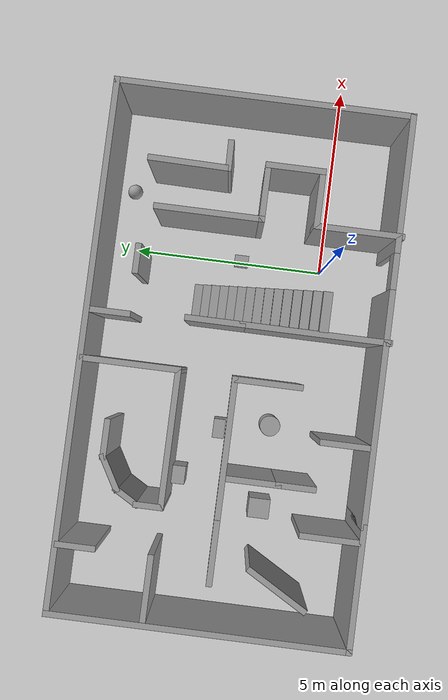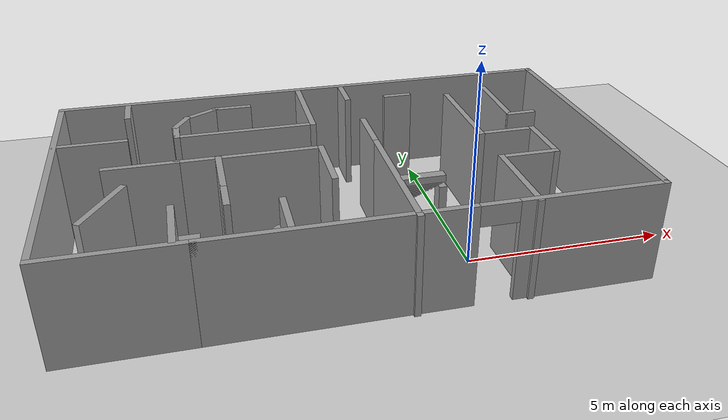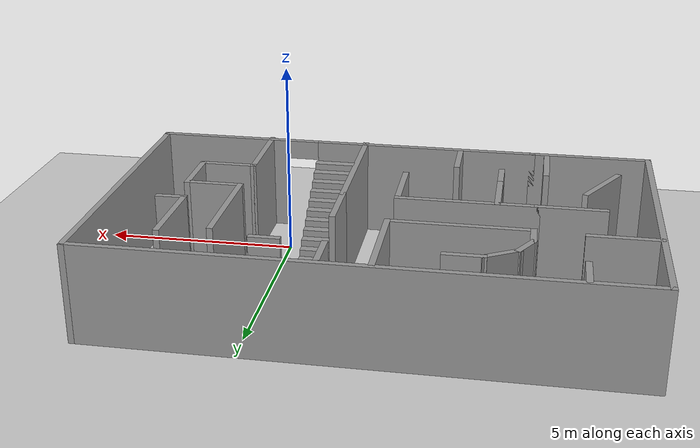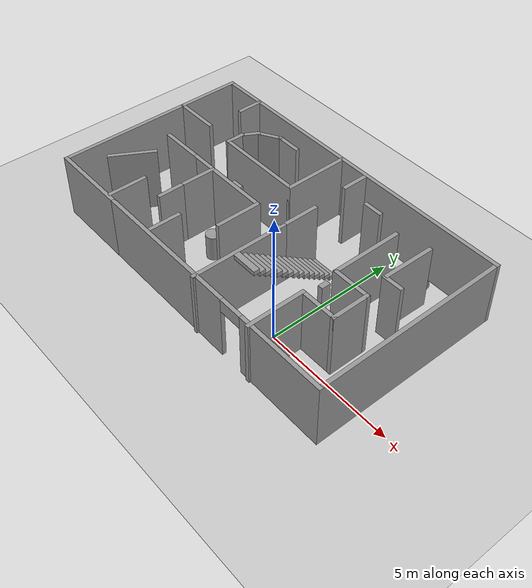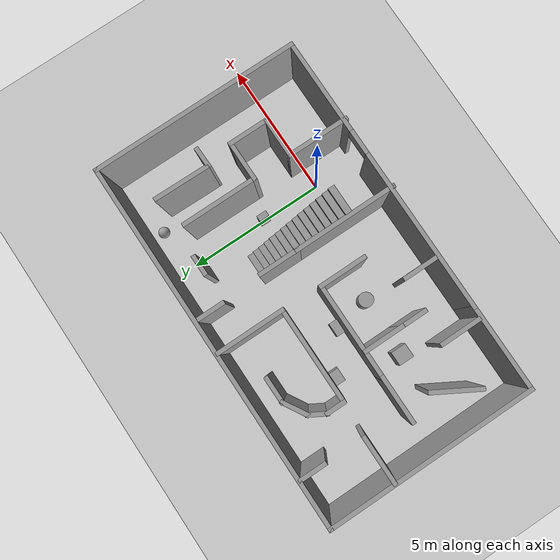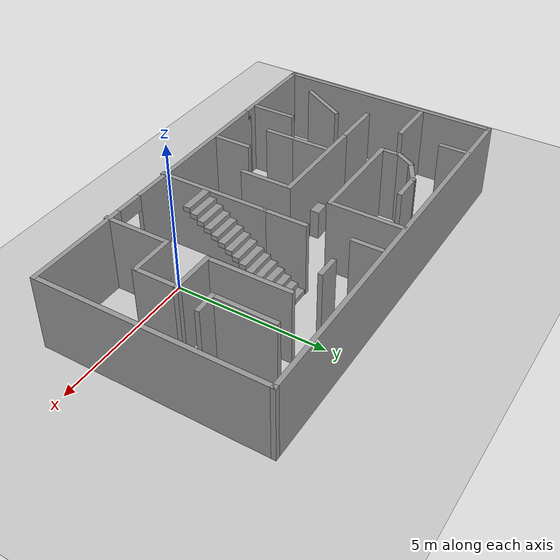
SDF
<sdf version="1.7">
 <world name="default">
  <model name="ground_plane">
   <static>1</static>
   <link name="link">
    <collision name="collision">
     <geometry><plane><normal>0 0 1</normal><size>100 100</size></plane></geometry>
     <surface>
      <contact><collide_bitmask>65535</collide_bitmask></contact>
      <friction><ode><mu>100</mu><mu2>50</mu2></ode></friction>
     </surface>
    </collision>
    <visual name="visual">
     <cast_shadows>0</cast_shadows>
     <geometry><plane><normal>0 0 1</normal><size>100 100</size></plane></geometry>
     <material>
      <script><uri>file://media/materials/scripts/gazebo.material</uri><name>Gazebo/Grey</name></script>
     </material>
    </visual>
   </link>
  </model>
  <gravity>0 0 -9.8</gravity>
  <magnetic_field>6e-06 2.3e-05 -4.2e-05</magnetic_field>
  <atmosphere type="adiabatic"/>
  <physics type="ode">
   <max_step_size>0.001</max_step_size>
   <real_time_factor>1</real_time_factor>
   <real_time_update_rate>1000</real_time_update_rate>
  </physics>
  <scene><ambient>0.4 0.4 0.4 1</ambient><background>0.7 0.7 0.7 1</background><shadows>1</shadows></scene>
  <spherical_coordinates>
   <surface_model>EARTH_WGS84</surface_model>
   <latitude_deg>0</latitude_deg>
   <longitude_deg>0</longitude_deg>
   <elevation>0</elevation>
   <heading_deg>0</heading_deg>
  </spherical_coordinates>
  <model name="t4">
   <pose>-2.73 2.02824 0 0 -0 0</pose>
   <link name="Stairs_0">
    <visual name="Stairs_0_Visual_0">
     <pose>1.50667 1.17577 0.083333 0 -0 0</pose>
     <geometry><box><size>1 0.233333 0.166667</size></box></geometry>
     <material>
      <script><uri>file://media/materials/scripts/gazebo.material</uri><name>Gazebo/Grey</name></script>
      <ambient>1 1 1 1</ambient>
     </material>
     <meta><layer>0</layer></meta>
    </visual>
    <collision name="Stairs_0_Collision_0">
     <geometry><box><size>1 0.233333 0.166667</size></box></geometry>
     <pose>1.50667 1.17577 0.083333 0 -0 0</pose>
    </collision>
    <visual name="Stairs_0_Visual_1">
     <pose>1.50667 0.942433 0.25 0 -0 0</pose>
     <geometry><box><size>1 0.233333 0.166667</size></box></geometry>
     <material>
      <script><uri>file://media/materials/scripts/gazebo.material</uri><name>Gazebo/Grey</name></script>
      <ambient>1 1 1 1</ambient>
     </material>
     <meta><layer>0</layer></meta>
    </visual>
    <collision name="Stairs_0_Collision_1">
     <geometry><box><size>1 0.233333 0.166667</size></box></geometry>
     <pose>1.50667 0.942433 0.25 0 -0 0</pose>
    </collision>
    <visual name="Stairs_0_Visual_2">
     <pose>1.50667 0.7091 0.416667 0 -0 0</pose>
     <geometry><box><size>1 0.233333 0.166667</size></box></geometry>
     <material>
      <script><uri>file://media/materials/scripts/gazebo.material</uri><name>Gazebo/Grey</name></script>
      <ambient>1 1 1 1</ambient>
     </material>
     <meta><layer>0</layer></meta>
    </visual>
    <collision name="Stairs_0_Collision_2">
     <geometry><box><size>1 0.233333 0.166667</size></box></geometry>
     <pose>1.50667 0.7091 0.416667 0 -0 0</pose>
    </collision>
    <visual name="Stairs_0_Visual_3">
     <pose>1.50667 0.475766 0.583333 0 -0 0</pose>
     <geometry><box><size>1 0.233333 0.166667</size></box></geometry>
     <material>
      <script><uri>file://media/materials/scripts/gazebo.material</uri><name>Gazebo/Grey</name></script>
      <ambient>1 1 1 1</ambient>
     </material>
     <meta><layer>0</layer></meta>
    </visual>
    <collision name="Stairs_0_Collision_3">
     <geometry><box><size>1 0.233333 0.166667</size></box></geometry>
     <pose>1.50667 0.475766 0.583333 0 -0 0</pose>
    </collision>
    <visual name="Stairs_0_Visual_4">
     <pose>1.50667 0.242433 0.75 0 -0 0</pose>
     <geometry><box><size>1 0.233333 0.166667</size></box></geometry>
     <material>
      <script><uri>file://media/materials/scripts/gazebo.material</uri><name>Gazebo/Grey</name></script>
      <ambient>1 1 1 1</ambient>
     </material>
     <meta><layer>0</layer></meta>
    </visual>
    <collision name="Stairs_0_Collision_4">
     <geometry><box><size>1 0.233333 0.166667</size></box></geometry>
     <pose>1.50667 0.242433 0.75 0 -0 0</pose>
    </collision>
    <visual name="Stairs_0_Visual_5">
     <pose>1.50667 0.009099 0.916667 0 -0 0</pose>
     <geometry><box><size>1 0.233333 0.166667</size></box></geometry>
     <material>
      <script><uri>file://media/materials/scripts/gazebo.material</uri><name>Gazebo/Grey</name></script>
      <ambient>1 1 1 1</ambient>
     </material>
     <meta><layer>0</layer></meta>
    </visual>
    <collision name="Stairs_0_Collision_5">
     <geometry><box><size>1 0.233333 0.166667</size></box></geometry>
     <pose>1.50667 0.009099 0.916667 0 -0 0</pose>
    </collision>
    <visual name="Stairs_0_Visual_6">
     <pose>1.50667 -0.224234 1.08333 0 -0 0</pose>
     <geometry><box><size>1 0.233333 0.166667</size></box></geometry>
     <material>
      <script><uri>file://media/materials/scripts/gazebo.material</uri><name>Gazebo/Grey</name></script>
      <ambient>1 1 1 1</ambient>
     </material>
     <meta><layer>0</layer></meta>
    </visual>
    <collision name="Stairs_0_Collision_6">
     <geometry><box><size>1 0.233333 0.166667</size></box></geometry>
     <pose>1.50667 -0.224234 1.08333 0 -0 0</pose>
    </collision>
    <visual name="Stairs_0_Visual_7">
     <pose>1.50667 -0.457567 1.25 0 -0 0</pose>
     <geometry><box><size>1 0.233333 0.166667</size></box></geometry>
     <material>
      <script><uri>file://media/materials/scripts/gazebo.material</uri><name>Gazebo/Grey</name></script>
      <ambient>1 1 1 1</ambient>
     </material>
     <meta><layer>0</layer></meta>
    </visual>
    <collision name="Stairs_0_Collision_7">
     <geometry><box><size>1 0.233333 0.166667</size></box></geometry>
     <pose>1.50667 -0.457567 1.25 0 -0 0</pose>
    </collision>
    <visual name="Stairs_0_Visual_8">
     <pose>1.50667 -0.690901 1.41667 0 -0 0</pose>
     <geometry><box><size>1 0.233333 0.166667</size></box></geometry>
     <material>
      <script><uri>file://media/materials/scripts/gazebo.material</uri><name>Gazebo/Grey</name></script>
      <ambient>1 1 1 1</ambient>
     </material>
     <meta><layer>0</layer></meta>
    </visual>
    <collision name="Stairs_0_Collision_8">
     <geometry><box><size>1 0.233333 0.166667</size></box></geometry>
     <pose>1.50667 -0.690901 1.41667 0 -0 0</pose>
    </collision>
    <visual name="Stairs_0_Visual_9">
     <pose>1.50667 -0.924234 1.58333 0 -0 0</pose>
     <geometry><box><size>1 0.233333 0.166667</size></box></geometry>
     <material>
      <script><uri>file://media/materials/scripts/gazebo.material</uri><name>Gazebo/Grey</name></script>
      <ambient>1 1 1 1</ambient>
     </material>
     <meta><layer>0</layer></meta>
    </visual>
    <collision name="Stairs_0_Collision_9">
     <geometry><box><size>1 0.233333 0.166667</size></box></geometry>
     <pose>1.50667 -0.924234 1.58333 0 -0 0</pose>
    </collision>
    <visual name="Stairs_0_Visual_10">
     <pose>1.50667 -1.15757 1.75 0 -0 0</pose>
     <geometry><box><size>1 0.233333 0.166667</size></box></geometry>
     <material>
      <script><uri>file://media/materials/scripts/gazebo.material</uri><name>Gazebo/Grey</name></script>
      <ambient>1 1 1 1</ambient>
     </material>
     <meta><layer>0</layer></meta>
    </visual>
    <collision name="Stairs_0_Collision_10">
     <geometry><box><size>1 0.233333 0.166667</size></box></geometry>
     <pose>1.50667 -1.15757 1.75 0 -0 0</pose>
    </collision>
    <visual name="Stairs_0_Visual_11">
     <pose>1.50667 -1.3909 1.91667 0 -0 0</pose>
     <geometry><box><size>1 0.233333 0.166667</size></box></geometry>
     <material>
      <script><uri>file://media/materials/scripts/gazebo.material</uri><name>Gazebo/Grey</name></script>
      <ambient>1 1 1 1</ambient>
     </material>
     <meta><layer>0</layer></meta>
    </visual>
    <collision name="Stairs_0_Collision_11">
     <geometry><box><size>1 0.233333 0.166667</size></box></geometry>
     <pose>1.50667 -1.3909 1.91667 0 -0 0</pose>
    </collision>
    <visual name="Stairs_0_Visual_12">
     <pose>1.50667 -1.62423 2.08333 0 -0 0</pose>
     <geometry><box><size>1 0.233333 0.166667</size></box></geometry>
     <material>
      <script><uri>file://media/materials/scripts/gazebo.material</uri><name>Gazebo/Grey</name></script>
      <ambient>1 1 1 1</ambient>
     </material>
     <meta><layer>0</layer></meta>
    </visual>
    <collision name="Stairs_0_Collision_12">
     <geometry><box><size>1 0.233333 0.166667</size></box></geometry>
     <pose>1.50667 -1.62423 2.08333 0 -0 0</pose>
    </collision>
    <visual name="Stairs_0_Visual_13">
     <pose>1.50667 -1.85757 2.25 0 -0 0</pose>
     <geometry><box><size>1 0.233333 0.166667</size></box></geometry>
     <material>
      <script><uri>file://media/materials/scripts/gazebo.material</uri><name>Gazebo/Grey</name></script>
      <ambient>1 1 1 1</ambient>
     </material>
     <meta><layer>0</layer></meta>
    </visual>
    <collision name="Stairs_0_Collision_13">
     <geometry><box><size>1 0.233333 0.166667</size></box></geometry>
     <pose>1.50667 -1.85757 2.25 0 -0 0</pose>
    </collision>
    <visual name="Stairs_0_Visual_14">
     <pose>1.50667 -2.0909 2.41667 0 -0 0</pose>
     <geometry><box><size>1 0.233333 0.166667</size></box></geometry>
     <material>
      <script><uri>file://media/materials/scripts/gazebo.material</uri><name>Gazebo/Grey</name></script>
      <ambient>1 1 1 1</ambient>
     </material>
     <meta><layer>0</layer></meta>
    </visual>
    <collision name="Stairs_0_Collision_14">
     <geometry><box><size>1 0.233333 0.166667</size></box></geometry>
     <pose>1.50667 -2.0909 2.41667 0 -0 0</pose>
    </collision>
   </link>
   <link name="Wall_1">
    <pose>1.5 -3.63824 0 0 -0 0</pose>
    <visual name="Wall_1_Visual_0">
     <pose>-2.18566 0 1.25 0 -0 0</pose>
     <geometry><box><size>5.87868 0.15 2.5</size></box></geometry>
     <material>
      <script><uri>file://media/materials/scripts/gazebo.material</uri><name>Gazebo/Grey</name></script>
      <ambient>1 1 1 1</ambient>
     </material>
     <meta><layer>0</layer></meta>
    </visual>
    <collision name="Wall_1_Collision_0">
     <geometry><box><size>5.87868 0.15 2.5</size></box></geometry>
     <pose>-2.18566 0 1.25 0 -0 0</pose>
    </collision>
    <visual name="Wall_1_Visual_1">
     <pose>3.38934 0 1.25 0 -0 0</pose>
     <geometry><box><size>3.47132 0.15 2.5</size></box></geometry>
     <material>
      <script><uri>file://media/materials/scripts/gazebo.material</uri><name>Gazebo/Grey</name></script>
      <ambient>1 1 1 1</ambient>
     </material>
     <meta><layer>0</layer></meta>
    </visual>
    <collision name="Wall_1_Collision_1">
     <geometry><box><size>3.47132 0.15 2.5</size></box></geometry>
     <pose>3.38934 0 1.25 0 -0 0</pose>
    </collision>
    <visual name="Wall_1_Visual_2">
     <pose>1.20368 0 2.25 0 -0 0</pose>
     <geometry><box><size>0.9 0.15 0.5</size></box></geometry>
     <material>
      <script><uri>file://media/materials/scripts/gazebo.material</uri><name>Gazebo/Grey</name></script>
      <ambient>1 1 1 1</ambient>
     </material>
     <meta><layer>0</layer></meta>
    </visual>
    <collision name="Wall_1_Collision_2">
     <geometry><box><size>0.9 0.15 0.5</size></box></geometry>
     <pose>1.20368 0 2.25 0 -0 0</pose>
    </collision>
   </link>
   <link name="Wall_10">
    <collision name="Wall_10_Collision">
     <geometry><box><size>3.5 0.15 2.5</size></box></geometry>
     <pose>0 0 1.25 0 -0 0</pose>
    </collision>
    <visual name="Wall_10_Visual">
     <pose>0 0 1.25 0 -0 0</pose>
     <geometry><box><size>3.5 0.15 2.5</size></box></geometry>
     <material>
      <script><uri>file://media/materials/scripts/gazebo.material</uri><name>Gazebo/Grey</name></script>
      <ambient>1 1 1 1</ambient>
     </material>
     <meta><layer>0</layer></meta>
    </visual>
    <pose>-2.07187 -0.098464 0 0 -0 0</pose>
   </link>
   <link name="Wall_11">
    <collision name="Wall_11_Collision">
     <geometry><box><size>1.75 0.15 2.5</size></box></geometry>
     <pose>0 0 1.25 0 -0 0</pose>
    </collision>
    <visual name="Wall_11_Visual">
     <pose>0 0 1.25 0 -0 0</pose>
     <geometry><box><size>1.75 0.15 2.5</size></box></geometry>
     <material>
      <script><uri>file://media/materials/scripts/gazebo.material</uri><name>Gazebo/Grey</name></script>
      <ambient>1 1 1 1</ambient>
     </material>
     <meta><layer>0</layer></meta>
    </visual>
    <pose>-0.396867 -0.898465 0 0 -0 -1.5708</pose>
   </link>
   <link name="Wall_13">
    <collision name="Wall_13_Collision">
     <geometry><box><size>0.75 0.15 2.5</size></box></geometry>
     <pose>0 0 1.25 0 -0 0</pose>
    </collision>
    <visual name="Wall_13_Visual">
     <pose>0 0 1.25 0 -0 0</pose>
     <geometry><box><size>0.75 0.15 2.5</size></box></geometry>
     <material>
      <script><uri>file://media/materials/scripts/gazebo.material</uri><name>Gazebo/Grey</name></script>
      <ambient>1 1 1 1</ambient>
     </material>
     <meta><layer>0</layer></meta>
    </visual>
    <pose>-3.69367 1.59805 0 0 -0 1.5708</pose>
   </link>
   <link name="Wall_14">
    <collision name="Wall_14_Collision">
     <geometry><box><size>0.75 0.15 2.5</size></box></geometry>
     <pose>0 0 1.25 0 -0 0</pose>
    </collision>
    <visual name="Wall_14_Visual">
     <pose>0 0 1.25 0 -0 0</pose>
     <geometry><box><size>0.75 0.15 2.5</size></box></geometry>
     <material>
      <script><uri>file://media/materials/scripts/gazebo.material</uri><name>Gazebo/Grey</name></script>
      <ambient>1 1 1 1</ambient>
     </material>
     <meta><layer>0</layer></meta>
    </visual>
    <pose>-3.54367 2.15785 0 0 -0 1.0472</pose>
   </link>
   <link name="Wall_15">
    <collision name="Wall_15_Collision">
     <geometry><box><size>1 0.15 2.5</size></box></geometry>
     <pose>0 0 1.25 0 -0 0</pose>
    </collision>
    <visual name="Wall_15_Visual">
     <pose>0 0 1.25 0 -0 0</pose>
     <geometry><box><size>1 0.15 2.5</size></box></geometry>
     <material>
      <script><uri>file://media/materials/scripts/gazebo.material</uri><name>Gazebo/Grey</name></script>
      <ambient>1 1 1 1</ambient>
     </material>
     <meta><layer>0</layer></meta>
    </visual>
    <pose>-3.02561 2.63016 0 0 -0 0.523599</pose>
   </link>
   <link name="Wall_16">
    <collision name="Wall_16_Collision">
     <geometry><box><size>1 0.15 2.5</size></box></geometry>
     <pose>0 0 1.25 0 -0 0</pose>
    </collision>
    <visual name="Wall_16_Visual">
     <pose>0 0 1.25 0 -0 0</pose>
     <geometry><box><size>1 0.15 2.5</size></box></geometry>
     <material>
      <script><uri>file://media/materials/scripts/gazebo.material</uri><name>Gazebo/Grey</name></script>
      <ambient>1 1 1 1</ambient>
     </material>
     <meta><layer>0</layer></meta>
    </visual>
    <pose>-2.23255 2.84266 0 0 -0 0</pose>
   </link>
   <link name="Wall_19">
    <collision name="Wall_19_Collision">
     <geometry><box><size>3.75 0.15 2.5</size></box></geometry>
     <pose>0 0 1.25 0 -0 0</pose>
    </collision>
    <visual name="Wall_19_Visual">
     <pose>0 0 1.25 0 -0 0</pose>
     <geometry><box><size>3.75 0.15 2.5</size></box></geometry>
     <material>
      <script><uri>file://media/materials/scripts/gazebo.material</uri><name>Gazebo/Grey</name></script>
      <ambient>1 1 1 1</ambient>
     </material>
     <meta><layer>0</layer></meta>
    </visual>
    <pose>0.948068 -1.91176 0 0 -0 -1.5708</pose>
   </link>
   <link name="Wall_2">
    <collision name="Wall_2_Collision">
     <geometry><box><size>7.5 0.15 2.5</size></box></geometry>
     <pose>0 0 1.25 0 -0 0</pose>
    </collision>
    <visual name="Wall_2_Visual">
     <pose>0 0 1.25 0 -0 0</pose>
     <geometry><box><size>7.5 0.15 2.5</size></box></geometry>
     <material>
      <script><uri>file://media/materials/scripts/gazebo.material</uri><name>Gazebo/Grey</name></script>
      <ambient>1 1 1 1</ambient>
     </material>
     <meta><layer>0</layer></meta>
    </visual>
    <pose>6.55 0.036764 0 0 -0 1.5708</pose>
   </link>
   <link name="Wall_20">
    <collision name="Wall_20_Collision">
     <geometry><box><size>0.15 0.15 2.5</size></box></geometry>
     <pose>0 0 1.25 0 -0 0</pose>
    </collision>
    <visual name="Wall_20_Visual">
     <pose>0 0 1.25 0 -0 0</pose>
     <geometry><box><size>0.15 0.15 2.5</size></box></geometry>
     <material>
      <script><uri>file://media/materials/scripts/gazebo.material</uri><name>Gazebo/Grey</name></script>
      <ambient>1 1 1 1</ambient>
     </material>
     <meta><layer>0</layer></meta>
    </visual>
    <pose>0.948068 -3.71177 0 0 -0 0</pose>
   </link>
   <link name="Wall_21">
    <collision name="Wall_21_Collision">
     <geometry><box><size>0.15 0.15 2.5</size></box></geometry>
     <pose>0 0 1.25 0 -0 0</pose>
    </collision>
    <visual name="Wall_21_Visual">
     <pose>0 0 1.25 0 -0 0</pose>
     <geometry><box><size>0.15 0.15 2.5</size></box></geometry>
     <material>
      <script><uri>file://media/materials/scripts/gazebo.material</uri><name>Gazebo/Grey</name></script>
      <ambient>1 1 1 1</ambient>
     </material>
     <meta><layer>0</layer></meta>
    </visual>
    <pose>0.948068 -3.71177 0 0 -0 0</pose>
   </link>
   <link name="Wall_23">
    <collision name="Wall_23_Collision">
     <geometry><box><size>1.5 0.15 2.5</size></box></geometry>
     <pose>0 0 1.25 0 -0 0</pose>
    </collision>
    <visual name="Wall_23_Visual">
     <pose>0 0 1.25 0 -0 0</pose>
     <geometry><box><size>1.5 0.15 2.5</size></box></geometry>
     <material>
      <script><uri>file://media/materials/scripts/gazebo.material</uri><name>Gazebo/Grey</name></script>
      <ambient>1 1 1 1</ambient>
     </material>
     <meta><layer>0</layer></meta>
    </visual>
    <pose>0.948068 0.563235 0 0 -0 1.5708</pose>
   </link>
   <link name="Wall_25">
    <collision name="Wall_25_Collision">
     <geometry><box><size>1 0.15 2.5</size></box></geometry>
     <pose>0 0 1.25 0 -0 0</pose>
    </collision>
    <visual name="Wall_25_Visual">
     <pose>0 0 1.25 0 -0 0</pose>
     <geometry><box><size>1 0.15 2.5</size></box></geometry>
     <material>
      <script><uri>file://media/materials/scripts/gazebo.material</uri><name>Gazebo/Grey</name></script>
      <ambient>1 1 1 1</ambient>
     </material>
     <meta><layer>0</layer></meta>
    </visual>
    <pose>0.854967 3.13286 0 0 -0 1.5708</pose>
   </link>
   <link name="Wall_28">
    <collision name="Wall_28_Collision">
     <geometry><box><size>2.25 0.15 2.5</size></box></geometry>
     <pose>0 0 1.25 0 -0 0</pose>
    </collision>
    <visual name="Wall_28_Visual">
     <pose>0 0 1.25 0 -0 0</pose>
     <geometry><box><size>2.25 0.15 2.5</size></box></geometry>
     <material>
      <script><uri>file://media/materials/scripts/gazebo.material</uri><name>Gazebo/Grey</name></script>
      <ambient>1 1 1 1</ambient>
     </material>
     <meta><layer>0</layer></meta>
    </visual>
    <pose>3.56819 -2.65279 0 0 -0 1.5708</pose>
   </link>
   <link name="Wall_29">
    <collision name="Wall_29_Collision">
     <geometry><box><size>1.5 0.15 2.5</size></box></geometry>
     <pose>0 0 1.25 0 -0 0</pose>
    </collision>
    <visual name="Wall_29_Visual">
     <pose>0 0 1.25 0 -0 0</pose>
     <geometry><box><size>1.5 0.15 2.5</size></box></geometry>
     <material>
      <script><uri>file://media/materials/scripts/gazebo.material</uri><name>Gazebo/Grey</name></script>
      <ambient>1 1 1 1</ambient>
     </material>
     <meta><layer>0</layer></meta>
    </visual>
    <pose>4.24319 -1.60279 0 0 -0 0</pose>
   </link>
   <link name="Wall_3">
    <collision name="Wall_3_Collision">
     <geometry><box><size>13.25 0.15 2.5</size></box></geometry>
     <pose>0 0 1.25 0 -0 0</pose>
    </collision>
    <visual name="Wall_3_Visual">
     <pose>0 0 1.25 0 -0 0</pose>
     <geometry><box><size>13.25 0.15 2.5</size></box></geometry>
     <material>
      <script><uri>file://media/materials/scripts/gazebo.material</uri><name>Gazebo/Grey</name></script>
      <ambient>1 1 1 1</ambient>
     </material>
     <meta><layer>0</layer></meta>
    </visual>
    <pose>0 3.71176 0 0 -0 3.14159</pose>
   </link>
   <link name="Wall_30">
    <collision name="Wall_30_Collision">
     <geometry><box><size>1.5 0.15 2.5</size></box></geometry>
     <pose>0 0 1.25 0 -0 0</pose>
    </collision>
    <visual name="Wall_30_Visual">
     <pose>0 0 1.25 0 -0 0</pose>
     <geometry><box><size>1.5 0.15 2.5</size></box></geometry>
     <material>
      <script><uri>file://media/materials/scripts/gazebo.material</uri><name>Gazebo/Grey</name></script>
      <ambient>1 1 1 1</ambient>
     </material>
     <meta><layer>0</layer></meta>
    </visual>
    <pose>4.91819 -0.927791 0 0 -0 1.5708</pose>
   </link>
   <link name="Wall_31">
    <collision name="Wall_31_Collision">
     <geometry><box><size>1.5 0.15 2.5</size></box></geometry>
     <pose>0 0 1.25 0 -0 0</pose>
    </collision>
    <visual name="Wall_31_Visual">
     <pose>0 0 1.25 0 -0 0</pose>
     <geometry><box><size>1.5 0.15 2.5</size></box></geometry>
     <material>
      <script><uri>file://media/materials/scripts/gazebo.material</uri><name>Gazebo/Grey</name></script>
      <ambient>1 1 1 1</ambient>
     </material>
     <meta><layer>0</layer></meta>
    </visual>
    <pose>4.24319 -0.252792 0 0 -0 3.14159</pose>
   </link>
   <link name="Wall_32">
    <collision name="Wall_32_Collision">
     <geometry><box><size>2.75 0.15 2.5</size></box></geometry>
     <pose>0 0 1.25 0 -0 0</pose>
    </collision>
    <visual name="Wall_32_Visual">
     <pose>0 0 1.25 0 -0 0</pose>
     <geometry><box><size>2.75 0.15 2.5</size></box></geometry>
     <material>
      <script><uri>file://media/materials/scripts/gazebo.material</uri><name>Gazebo/Grey</name></script>
      <ambient>1 1 1 1</ambient>
     </material>
     <meta><layer>0</layer></meta>
    </visual>
    <pose>3.56819 1.04721 0 0 -0 1.5708</pose>
   </link>
   <link name="Wall_34">
    <collision name="Wall_34_Collision">
     <geometry><box><size>2.00019 0.15 2.5</size></box></geometry>
     <pose>0 0 1.25 0 -0 0</pose>
    </collision>
    <visual name="Wall_34_Visual">
     <pose>0 0 1.25 0 -0 0</pose>
     <geometry><box><size>2.00019 0.15 2.5</size></box></geometry>
     <material>
      <script><uri>file://media/materials/scripts/gazebo.material</uri><name>Gazebo/Grey</name></script>
      <ambient>1 1 1 1</ambient>
     </material>
     <meta><layer>0</layer></meta>
    </visual>
    <pose>4.7253 1.71636 0 0 -0 -1.58517</pose>
   </link>
   <link name="Wall_36">
    <collision name="Wall_36_Collision">
     <geometry><box><size>0.776741 0.15 2.5</size></box></geometry>
     <pose>0 0 1.25 0 -0 0</pose>
    </collision>
    <visual name="Wall_36_Visual">
     <pose>0 0 1.25 0 -0 0</pose>
     <geometry><box><size>0.776741 0.15 2.5</size></box></geometry>
     <material>
      <script><uri>file://media/materials/scripts/gazebo.material</uri><name>Gazebo/Grey</name></script>
      <ambient>1 1 1 1</ambient>
     </material>
     <meta><layer>0</layer></meta>
    </visual>
    <pose>5.0274 0.720999 0 0 -0 0.021223</pose>
   </link>
   <link name="Wall_38">
    <collision name="Wall_38_Collision">
     <geometry><box><size>1.25 0.15 2.5</size></box></geometry>
     <pose>0 0 1.25 0 -0 0</pose>
    </collision>
    <visual name="Wall_38_Visual">
     <pose>0 0 1.25 0 -0 0</pose>
     <geometry><box><size>1.25 0.15 2.5</size></box></geometry>
     <material>
      <script><uri>file://media/materials/scripts/gazebo.material</uri><name>Gazebo/Grey</name></script>
      <ambient>1 1 1 1</ambient>
     </material>
     <meta><layer>0</layer></meta>
    </visual>
    <pose>-1.64545 -2.94938 0 0 -0 -1.5708</pose>
   </link>
   <link name="Wall_4">
    <collision name="Wall_4_Collision">
     <geometry><box><size>7.5 0.15 2.5</size></box></geometry>
     <pose>0 0 1.25 0 -0 0</pose>
    </collision>
    <visual name="Wall_4_Visual">
     <pose>0 0 1.25 0 -0 0</pose>
     <geometry><box><size>7.5 0.15 2.5</size></box></geometry>
     <material>
      <script><uri>file://media/materials/scripts/gazebo.material</uri><name>Gazebo/Grey</name></script>
      <ambient>1 1 1 1</ambient>
     </material>
     <meta><layer>0</layer></meta>
    </visual>
    <pose>-6.55 0.036764 0 0 -0 -1.5708</pose>
   </link>
   <link name="Wall_41">
    <collision name="Wall_41_Collision">
     <geometry><box><size>1.5 0.15 2.5</size></box></geometry>
     <pose>0 0 1.25 0 -0 0</pose>
    </collision>
    <visual name="Wall_41_Visual">
     <pose>0 0 1.25 0 -0 0</pose>
     <geometry><box><size>1.5 0.15 2.5</size></box></geometry>
     <material>
      <script><uri>file://media/materials/scripts/gazebo.material</uri><name>Gazebo/Grey</name></script>
      <ambient>1 1 1 1</ambient>
     </material>
     <meta><layer>0</layer></meta>
    </visual>
    <pose>-2.80256 -0.786765 0 0 -0 -1.5708</pose>
   </link>
   <link name="Wall_42">
    <collision name="Wall_42_Collision">
     <geometry><box><size>1 0.15 2.5</size></box></geometry>
     <pose>0 0 1.25 0 -0 0</pose>
    </collision>
    <visual name="Wall_42_Visual">
     <pose>0 0 1.25 0 -0 0</pose>
     <geometry><box><size>1 0.15 2.5</size></box></geometry>
     <material>
      <script><uri>file://media/materials/scripts/gazebo.material</uri><name>Gazebo/Grey</name></script>
      <ambient>1 1 1 1</ambient>
     </material>
     <meta><layer>0</layer></meta>
    </visual>
    <pose>-2.80256 -1.88677 0 0 -0 -1.5708</pose>
   </link>
   <link name="Wall_44">
    <collision name="Wall_44_Collision">
     <geometry><box><size>1.75 0.15 2.5</size></box></geometry>
     <pose>0 0 1.25 0 -0 0</pose>
    </collision>
    <visual name="Wall_44_Visual">
     <pose>0 0 1.25 0 -0 0</pose>
     <geometry><box><size>1.75 0.15 2.5</size></box></geometry>
     <material>
      <script><uri>file://media/materials/scripts/gazebo.material</uri><name>Gazebo/Grey</name></script>
      <ambient>1 1 1 1</ambient>
     </material>
     <meta><layer>0</layer></meta>
    </visual>
    <pose>-5.71329 1.37785 0 0 -0 0</pose>
   </link>
   <link name="Wall_46">
    <collision name="Wall_46_Collision">
     <geometry><box><size>1 0.15 2.5</size></box></geometry>
     <pose>0 0 1.25 0 -0 0</pose>
    </collision>
    <visual name="Wall_46_Visual">
     <pose>0 0 1.25 0 -0 0</pose>
     <geometry><box><size>1 0.15 2.5</size></box></geometry>
     <material>
      <script><uri>file://media/materials/scripts/gazebo.material</uri><name>Gazebo/Grey</name></script>
      <ambient>1 1 1 1</ambient>
     </material>
     <meta><layer>0</layer></meta>
    </visual>
    <pose>-4.87738 3.22716 0 0 -0 -1.5708</pose>
   </link>
   <link name="Wall_48">
    <collision name="Wall_48_Collision">
     <geometry><box><size>1.75 0.15 2.5</size></box></geometry>
     <pose>0 0 1.25 0 -0 0</pose>
    </collision>
    <visual name="Wall_48_Visual">
     <pose>0 0 1.25 0 -0 0</pose>
     <geometry><box><size>1.75 0.15 2.5</size></box></geometry>
     <material>
      <script><uri>file://media/materials/scripts/gazebo.material</uri><name>Gazebo/Grey</name></script>
      <ambient>1 1 1 1</ambient>
     </material>
     <meta><layer>0</layer></meta>
    </visual>
    <pose>-4.54687 -0.098464 0 0 -0 3.14159</pose>
   </link>
   <link name="Wall_5">
    <collision name="Wall_5_Collision">
     <geometry><box><size>3.15 0.15 2.5</size></box></geometry>
     <pose>0 0 1.25 0 -0 0</pose>
    </collision>
    <visual name="Wall_5_Visual">
     <pose>0 0 1.25 0 -0 0</pose>
     <geometry><box><size>3.15 0.15 2.5</size></box></geometry>
     <material>
      <script><uri>file://media/materials/scripts/gazebo.material</uri><name>Gazebo/Grey</name></script>
      <ambient>1 1 1 1</ambient>
     </material>
     <meta><layer>0</layer></meta>
    </visual>
    <pose>-5.05 -3.63824 0 0 -0 0</pose>
   </link>
   <link name="Wall_50">
    <collision name="Wall_50_Collision">
     <geometry><box><size>1.5 0.15 2.5</size></box></geometry>
     <pose>0 0 1.25 0 -0 0</pose>
    </collision>
    <visual name="Wall_50_Visual">
     <pose>0 0 1.25 0 -0 0</pose>
     <geometry><box><size>1.5 0.15 2.5</size></box></geometry>
     <material>
      <script><uri>file://media/materials/scripts/gazebo.material</uri><name>Gazebo/Grey</name></script>
      <ambient>1 1 1 1</ambient>
     </material>
     <meta><layer>0</layer></meta>
    </visual>
    <pose>-3.93307 -2.85489 0 0 -0 1.5708</pose>
   </link>
   <link name="Wall_52">
    <collision name="Wall_52_Collision">
     <geometry><box><size>1.75 0.15 2.5</size></box></geometry>
     <pose>0 0 1.25 0 -0 0</pose>
    </collision>
    <visual name="Wall_52_Visual">
     <pose>0 0 1.25 0 -0 0</pose>
     <geometry><box><size>1.75 0.15 2.5</size></box></geometry>
     <material>
      <script><uri>file://media/materials/scripts/gazebo.material</uri><name>Gazebo/Grey</name></script>
      <ambient>1 1 1 1</ambient>
     </material>
     <meta><layer>0</layer></meta>
    </visual>
    <pose>-5.31728 -1.73559 0 0 -0 -2.0944</pose>
   </link>
   <link name="Wall_55">
    <collision name="Wall_55_Collision">
     <geometry><box><size>0.75 0.15 2.5</size></box></geometry>
     <pose>0 0 1.25 0 -0 0</pose>
    </collision>
    <visual name="Wall_55_Visual">
     <pose>0 0 1.25 0 -0 0</pose>
     <geometry><box><size>0.75 0.15 2.5</size></box></geometry>
     <material>
      <script><uri>file://media/materials/scripts/gazebo.material</uri><name>Gazebo/Grey</name></script>
      <ambient>1 1 1 1</ambient>
     </material>
     <meta><layer>0</layer></meta>
    </visual>
    <pose>2.23228 2.65466 0 0 -0 0</pose>
   </link>
   <link name="Wall_7">
    <collision name="Wall_7_Collision">
     <geometry><box><size>3.5 0.15 2.5</size></box></geometry>
     <pose>0 0 1.25 0 -0 0</pose>
    </collision>
    <visual name="Wall_7_Visual">
     <pose>0 0 1.25 0 -0 0</pose>
     <geometry><box><size>3.5 0.15 2.5</size></box></geometry>
     <material>
      <script><uri>file://media/materials/scripts/gazebo.material</uri><name>Gazebo/Grey</name></script>
      <ambient>1 1 1 1</ambient>
     </material>
     <meta><layer>0</layer></meta>
    </visual>
    <pose>-2.01867 1.29805 0 0 -0 0</pose>
   </link>
   <link name="Wall_8">
    <collision name="Wall_8_Collision">
     <geometry><box><size>2.5 0.15 2.5</size></box></geometry>
     <pose>0 0 1.25 0 -0 0</pose>
    </collision>
    <visual name="Wall_8_Visual">
     <pose>0 0 1.25 0 -0 0</pose>
     <geometry><box><size>2.5 0.15 2.5</size></box></geometry>
     <material>
      <script><uri>file://media/materials/scripts/gazebo.material</uri><name>Gazebo/Grey</name></script>
      <ambient>1 1 1 1</ambient>
     </material>
     <meta><layer>0</layer></meta>
    </visual>
    <pose>-0.343667 2.47305 0 0 -0 1.5708</pose>
   </link>
   <static>1</static>
  </model>
  <light name="user_directional_light_0" type="directional">
   <pose>-13.5936 6.323 1 0 -0 0</pose>
   <diffuse>0.5 0.5 0.5 1</diffuse>
   <specular>0.1 0.1 0.1 1</specular>
   <direction>0.1 0.1 -0.9</direction>
   <attenuation>
    <range>20</range>
    <constant>0.5</constant>
    <linear>0.01</linear>
    <quadratic>0.001</quadratic>
   </attenuation>
   <spot><inner_angle>0</inner_angle><outer_angle>0</outer_angle><falloff>0</falloff></spot>
  </light>
  <light name="user_point_light_0" type="point">
   <pose>-0.42257 3.84325 1 0 -0 0</pose>
   <diffuse>0.5 0.5 0.5 1</diffuse>
   <specular>0.1 0.1 0.1 1</specular>
   <attenuation>
    <range>20</range>
    <constant>0.5</constant>
    <linear>0.01</linear>
    <quadratic>0.001</quadratic>
   </attenuation>
   <cast_shadows>0</cast_shadows>
   <direction>0 0 -1</direction>
   <spot><inner_angle>0</inner_angle><outer_angle>0</outer_angle><falloff>0</falloff></spot>
  </light>
  <model name="unit_box">
   <pose>-0.004116 2.14425 0.499999 2e-06 2e-06 8.6e-05</pose>
   <link name="link">
    <inertial>
     <mass>1</mass>
     <inertia>
      <ixx>0.166667</ixx>
      <ixy>0</ixy>
      <ixz>0</ixz>
      <iyy>0.166667</iyy>
      <iyz>0</iyz>
      <izz>0.166667</izz>
     </inertia>
    </inertial>
    <collision name="collision"><geometry><box><size>0.206224 0.363562 1</size></box></geometry></collision>
    <visual name="visual">
     <geometry><box><size>0.206224 0.363562 1</size></box></geometry>
     <material>
      <script><name>Gazebo/Grey</name><uri>file://media/materials/scripts/gazebo.material</uri></script>
     </material>
    </visual>
   </link>
  </model>
  <model name="unit_box_0">
   <pose>-4.47203 2.18004 0.5 0 -0 0.000357</pose>
   <link name="link">
    <inertial>
     <mass>1</mass>
     <inertia>
      <ixx>0.166667</ixx>
      <ixy>0</ixy>
      <ixz>0</ixz>
      <iyy>0.166667</iyy>
      <iyz>0</iyz>
      <izz>0.166667</izz>
     </inertia>
    </inertial>
    <collision name="collision"><geometry><box><size>0.496038 0.302122 1</size></box></geometry></collision>
    <visual name="visual">
     <geometry><box><size>0.496038 0.302122 1</size></box></geometry>
     <material>
      <script><name>Gazebo/Grey</name><uri>file://media/materials/scripts/gazebo.material</uri></script>
     </material>
    </visual>
   </link>
  </model>
  <model name="unit_cylinder_0">
   <pose>-4.24194 0.865058 0.499991 0 -0 0</pose>
   <link name="link">
    <inertial>
     <mass>1</mass>
     <inertia><ixx>0.145833</ixx><ixy>0</ixy><ixz>0</ixz><iyy>0.145833</iyy><iyz>0</iyz><izz>0.125</izz></inertia>
    </inertial>
    <collision name="collision">
     <geometry><cylinder><radius>0.263522</radius><length>1</length></cylinder></geometry>
    </collision>
    <visual name="visual">
     <geometry><cylinder><radius>0.263522</radius><length>1</length></cylinder></geometry>
     <material>
      <script><name>Gazebo/Grey</name><uri>file://media/materials/scripts/gazebo.material</uri></script>
     </material>
    </visual>
   </link>
  </model>
  <model name="unit_box_1">
   <pose>-6.38933 0.8881 0.5 0 0 -8.2e-05</pose>
   <link name="link">
    <inertial>
     <mass>1</mass>
     <inertia>
      <ixx>0.166667</ixx>
      <ixy>0</ixy>
      <ixz>0</ixz>
      <iyy>0.166667</iyy>
      <iyz>0</iyz>
      <izz>0.166667</izz>
     </inertia>
    </inertial>
    <collision name="collision"><geometry><box><size>0.504722 0.554427 1</size></box></geometry></collision>
    <visual name="visual">
     <geometry><box><size>0.504722 0.554427 1</size></box></geometry>
     <material>
      <script><name>Gazebo/Grey</name><uri>file://media/materials/scripts/gazebo.material</uri></script>
     </material>
    </visual>
   </link>
  </model>
  <model name="unit_sphere">
   <pose>1.56457 5.25321 0.197789 0.013525 -1e-06 0</pose>
   <link name="link">
    <inertial>
     <mass>1</mass>
     <inertia><ixx>0.1</ixx><ixy>0</ixy><ixz>0</ixz><iyy>0.1</iyy><iyz>0</iyz><izz>0.1</izz></inertia>
    </inertial>
    <collision name="collision"><geometry><sphere><radius>0.197789</radius></sphere></geometry></collision>
    <visual name="visual">
     <geometry><sphere><radius>0.197789</radius></sphere></geometry>
     <material>
      <script><name>Gazebo/Grey</name><uri>file://media/materials/scripts/gazebo.material</uri></script>
     </material>
    </visual>
   </link>
  </model>
  <model name="unit_box_2">
   <pose>-5.79316 3.07064 0.500001 -1e-06 2e-06 -0.000412</pose>
   <link name="link">
    <inertial>
     <mass>1</mass>
     <inertia>
      <ixx>0.166667</ixx>
      <ixy>0</ixy>
      <ixz>0</ixz>
      <iyy>0.166667</iyy>
      <iyz>0</iyz>
      <izz>0.166667</izz>
     </inertia>
    </inertial>
    <collision name="collision"><geometry><box><size>0.468071 0.3463 1</size></box></geometry></collision>
    <visual name="visual">
     <geometry><box><size>0.468071 0.3463 1</size></box></geometry>
     <material>
      <script><name>Gazebo/Grey</name><uri>file://media/materials/scripts/gazebo.material</uri></script>
     </material>
    </visual>
   </link>
  </model>
 </world>
</sdf>
